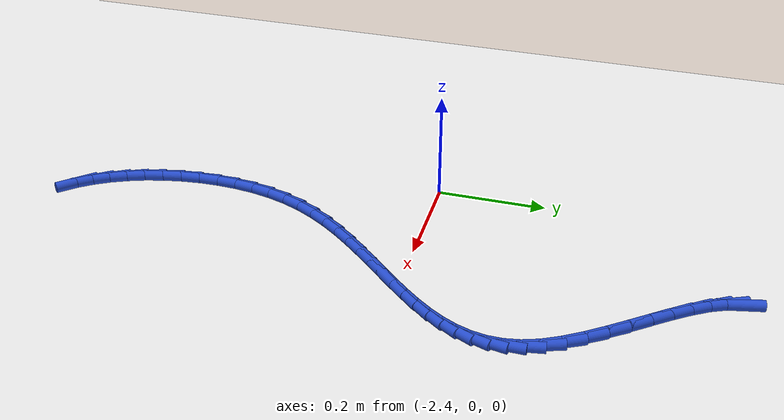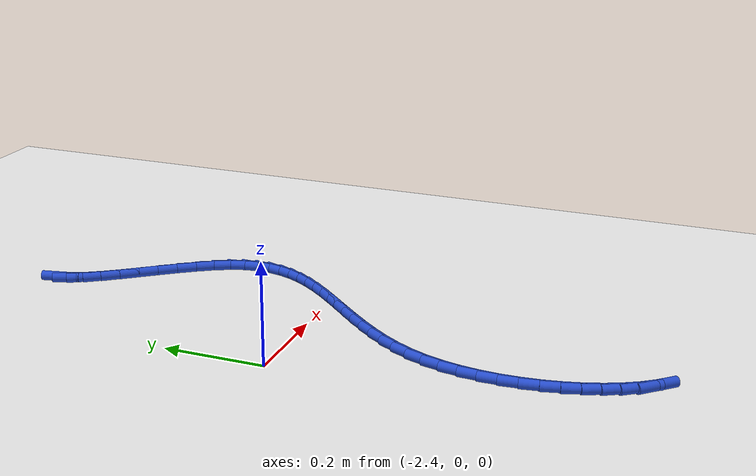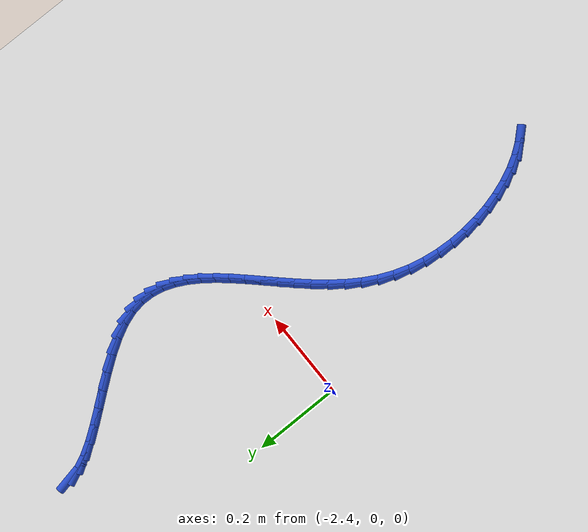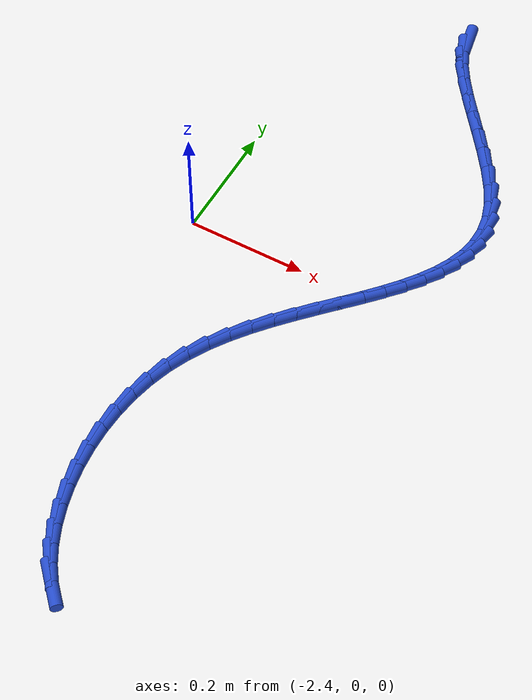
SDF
<sdf version="1.6">
 <world name="default">
  <model name="ground_plane">
   <static>1</static>
   <link name="link">
    <collision name="collision">
     <geometry><plane><normal>0 0 1</normal><size>100 100</size></plane></geometry>
     <surface><friction><ode><mu>100</mu><mu2>50</mu2></ode></friction></surface>
    </collision>
    <visual name="visual">
     <cast_shadows>0</cast_shadows>
     <geometry><plane><normal>0 0 1</normal><size>100 100</size></plane></geometry>
     <material>
      <script><uri>file://media/materials/scripts/gazebo.material</uri><name>Gazebo/WhiteGlow</name></script>
     </material>
    </visual>
   </link>
  </model>
  <model name="line">
   <link name="link_102">
    <pose>-2.1860757312835157 0.5619819282911989 0.01 0 1.57 -1.3673195941499068</pose>
    <collision name="collision">
     <geometry><cylinder><radius>0.01</radius><length>0.08</length></cylinder></geometry>
    </collision>
    <visual name="visual">
     <material>
      <script><name>Gazebo/Blue</name><uri>file://media/materials/scripts/gazebo.material</uri></script>
     </material>
     <geometry><cylinder><radius>0.01</radius><length>0.08</length></cylinder></geometry>
    </visual>
   </link>
   <link name="link_103">
    <pose>-2.1812020826465557 0.5383615304289775 0.01 0 1.57 -1.1474594475073037</pose>
    <collision name="collision">
     <geometry><cylinder><radius>0.01</radius><length>0.08</length></cylinder></geometry>
    </collision>
    <visual name="visual">
     <material>
      <script><name>Gazebo/Blue</name><uri>file://media/materials/scripts/gazebo.material</uri></script>
     </material>
     <geometry><cylinder><radius>0.01</radius><length>0.08</length></cylinder></geometry>
    </visual>
   </link>
   <link name="link_104">
    <pose>-2.1694296135405082 0.5122342141244356 0.01 0 1.57 -1.0219908702117755</pose>
    <collision name="collision">
     <geometry><cylinder><radius>0.01</radius><length>0.08</length></cylinder></geometry>
    </collision>
    <visual name="visual">
     <material>
      <script><name>Gazebo/Blue</name><uri>file://media/materials/scripts/gazebo.material</uri></script>
     </material>
     <geometry><cylinder><radius>0.01</radius><length>0.08</length></cylinder></geometry>
    </visual>
   </link>
   <link name="link_105">
    <pose>-2.1521715568479594 0.48401000259444965 0.01 0 1.57 -0.9513142937274885</pose>
    <collision name="collision">
     <geometry><cylinder><radius>0.01</radius><length>0.08</length></cylinder></geometry>
    </collision>
    <visual name="visual">
     <material>
      <script><name>Gazebo/Blue</name><uri>file://media/materials/scripts/gazebo.material</uri></script>
     </material>
     <geometry><cylinder><radius>0.01</radius><length>0.08</length></cylinder></geometry>
    </visual>
   </link>
   <link name="link_106">
    <pose>-2.1308411454514973 0.4540989190558954 0.01 0 1.57 -0.9151245507844217</pose>
    <collision name="collision">
     <geometry><cylinder><radius>0.01</radius><length>0.08</length></cylinder></geometry>
    </collision>
    <visual name="visual">
     <material>
      <script><name>Gazebo/Blue</name><uri>file://media/materials/scripts/gazebo.material</uri></script>
     </material>
     <geometry><cylinder><radius>0.01</radius><length>0.08</length></cylinder></geometry>
    </visual>
   </link>
   <link name="link_107">
    <pose>-2.106851612233709 0.42291098672564975 0.01 0 1.57 -0.9038722232317058</pose>
    <collision name="collision">
     <geometry><cylinder><radius>0.01</radius><length>0.08</length></cylinder></geometry>
    </collision>
    <visual name="visual">
     <material>
      <script><name>Gazebo/Blue</name><uri>file://media/materials/scripts/gazebo.material</uri></script>
     </material>
     <geometry><cylinder><radius>0.01</radius><length>0.08</length></cylinder></geometry>
    </visual>
   </link>
   <link name="link_108">
    <pose>-2.081616190077182 0.3908562288205889 0.01 0 1.57 -0.9139580029424577</pose>
    <collision name="collision">
     <geometry><cylinder><radius>0.01</radius><length>0.08</length></cylinder></geometry>
    </collision>
    <visual name="visual">
     <material>
      <script><name>Gazebo/Blue</name><uri>file://media/materials/scripts/gazebo.material</uri></script>
     </material>
     <geometry><cylinder><radius>0.01</radius><length>0.08</length></cylinder></geometry>
    </visual>
   </link>
   <link name="link_109">
    <pose>-2.056548111864503 0.3583446685575896 0.01 0 1.57 -0.9458535728049178</pose>
    <collision name="collision">
     <geometry><cylinder><radius>0.01</radius><length>0.08</length></cylinder></geometry>
    </collision>
    <visual name="visual">
     <material>
      <script><name>Gazebo/Blue</name><uri>file://media/materials/scripts/gazebo.material</uri></script>
     </material>
     <geometry><cylinder><radius>0.01</radius><length>0.08</length></cylinder></geometry>
    </visual>
   </link>
   <link name="link_110">
    <pose>-2.0330606104782594 0.3257863291535281 0.01 0 1.57 -1.0039366010225572</pose>
    <collision name="collision">
     <geometry><cylinder><radius>0.01</radius><length>0.08</length></cylinder></geometry>
    </collision>
    <visual name="visual">
     <material>
      <script><name>Gazebo/Blue</name><uri>file://media/materials/scripts/gazebo.material</uri></script>
     </material>
     <geometry><cylinder><radius>0.01</radius><length>0.08</length></cylinder></geometry>
    </visual>
   </link>
   <link name="link_111">
    <pose>-2.012566918801039 0.29359123382528085 0.01 0 1.57 -1.0976283259730517</pose>
    <collision name="collision">
     <geometry><cylinder><radius>0.01</radius><length>0.08</length></cylinder></geometry>
    </collision>
    <visual name="visual">
     <material>
      <script><name>Gazebo/Blue</name><uri>file://media/materials/scripts/gazebo.material</uri></script>
     </material>
     <geometry><cylinder><radius>0.01</radius><length>0.08</length></cylinder></geometry>
    </visual>
   </link>
   <link name="link_112">
    <pose>-1.996480269715428 0.26216940578972425 0.01 0 1.57 -1.2399537431158196</pose>
    <collision name="collision">
     <geometry><cylinder><radius>0.01</radius><length>0.08</length></cylinder></geometry>
    </collision>
    <visual name="visual">
     <material>
      <script><name>Gazebo/Blue</name><uri>file://media/materials/scripts/gazebo.material</uri></script>
     </material>
     <geometry><cylinder><radius>0.01</radius><length>0.08</length></cylinder></geometry>
    </visual>
   </link>
   <link name="link_113">
    <pose>-1.9860809287705712 0.2318918136920121 0.01 0 1.57 -1.4137387415297962</pose>
    <collision name="collision">
     <geometry><cylinder><radius>0.01</radius><length>0.08</length></cylinder></geometry>
    </collision>
    <visual name="visual">
     <material>
      <script><name>Gazebo/Blue</name><uri>file://media/materials/scripts/gazebo.material</uri></script>
     </material>
     <geometry><cylinder><radius>0.01</radius><length>0.08</length></cylinder></geometry>
    </visual>
   </link>
   <link name="link_114">
    <pose>-1.9814712768205203 0.20278346314176007 0.01 0 1.57 1.5470562556911096</pose>
    <collision name="collision">
     <geometry><cylinder><radius>0.01</radius><length>0.08</length></cylinder></geometry>
    </collision>
    <visual name="visual">
     <material>
      <script><name>Gazebo/Blue</name><uri>file://media/materials/scripts/gazebo.material</uri></script>
     </material>
     <geometry><cylinder><radius>0.01</radius><length>0.08</length></cylinder></geometry>
    </visual>
   </link>
   <link name="link_115">
    <pose>-1.9821383754633435 0.1746886309229937 0.01 0 1.57 1.3741833634985388</pose>
    <collision name="collision">
     <geometry><cylinder><radius>0.01</radius><length>0.08</length></cylinder></geometry>
    </collision>
    <visual name="visual">
     <material>
      <script><name>Gazebo/Blue</name><uri>file://media/materials/scripts/gazebo.material</uri></script>
     </material>
     <geometry><cylinder><radius>0.01</radius><length>0.08</length></cylinder></geometry>
    </visual>
   </link>
   <link name="link_116">
    <pose>-1.9875639313964522 0.1474500210022161 0.01 0 1.57 1.2215286965074512</pose>
    <collision name="collision">
     <geometry><cylinder><radius>0.01</radius><length>0.08</length></cylinder></geometry>
    </collision>
    <visual name="visual">
     <material>
      <script><name>Gazebo/Blue</name><uri>file://media/materials/scripts/gazebo.material</uri></script>
     </material>
     <geometry><cylinder><radius>0.01</radius><length>0.08</length></cylinder></geometry>
    </visual>
   </link>
   <link name="link_117">
    <pose>-1.9972296513172527 0.12091033734593039 0.01 0 1.57 1.0952636267815974</pose>
    <collision name="collision">
     <geometry><cylinder><radius>0.01</radius><length>0.08</length></cylinder></geometry>
    </collision>
    <visual name="visual">
     <material>
      <script><name>Gazebo/Blue</name><uri>file://media/materials/scripts/gazebo.material</uri></script>
     </material>
     <geometry><cylinder><radius>0.01</radius><length>0.08</length></cylinder></geometry>
    </visual>
   </link>
   <link name="link_118">
    <pose>-2.0106172419231534 0.09491228392063968 0.01 0 1.57 0.9960077179800424</pose>
    <collision name="collision">
     <geometry><cylinder><radius>0.01</radius><length>0.08</length></cylinder></geometry>
    </collision>
    <visual name="visual">
     <material>
      <script><name>Gazebo/Blue</name><uri>file://media/materials/scripts/gazebo.material</uri></script>
     </material>
     <geometry><cylinder><radius>0.01</radius><length>0.08</length></cylinder></geometry>
    </visual>
   </link>
   <link name="link_119">
    <pose>-2.027208409911564 0.06929856469284697 0.01 0 1.57 0.9213611156073147</pose>
    <collision name="collision">
     <geometry><cylinder><radius>0.01</radius><length>0.08</length></cylinder></geometry>
    </collision>
    <visual name="visual">
     <material>
      <script><name>Gazebo/Blue</name><uri>file://media/materials/scripts/gazebo.material</uri></script>
     </material>
     <geometry><cylinder><radius>0.01</radius><length>0.08</length></cylinder></geometry>
    </visual>
   </link>
   <link name="link_120">
    <pose>-2.046484861979891 0.04391188362905575 0.01 0 1.57 0.868046599441246</pose>
    <collision name="collision">
     <geometry><cylinder><radius>0.01</radius><length>0.08</length></cylinder></geometry>
    </collision>
    <visual name="visual">
     <material>
      <script><name>Gazebo/Blue</name><uri>file://media/materials/scripts/gazebo.material</uri></script>
     </material>
     <geometry><cylinder><radius>0.01</radius><length>0.08</length></cylinder></geometry>
    </visual>
   </link>
   <link name="link_121">
    <pose>-2.067928304825544 0.018594944695768414 0.01 0 1.57 0.8330427608606457</pose>
    <collision name="collision">
     <geometry><cylinder><radius>0.01</radius><length>0.08</length></cylinder></geometry>
    </collision>
    <visual name="visual">
     <material>
      <script><name>Gazebo/Blue</name><uri>file://media/materials/scripts/gazebo.material</uri></script>
     </material>
     <geometry><cylinder><radius>0.01</radius><length>0.08</length></cylinder></geometry>
    </visual>
   </link>
   <link name="link_122">
    <pose>-2.09102044514593 -0.006809548140511643 0.01 0 1.57 0.8139996315990207</pose>
    <collision name="collision">
     <geometry><cylinder><radius>0.01</radius><length>0.08</length></cylinder></geometry>
    </collision>
    <visual name="visual">
     <material>
      <script><name>Gazebo/Blue</name><uri>file://media/materials/scripts/gazebo.material</uri></script>
     </material>
     <geometry><cylinder><radius>0.01</radius><length>0.08</length></cylinder></geometry>
    </visual>
   </link>
   <link name="link_123">
    <pose>-2.11524298963846 -0.0324588909132813 0.01 0 1.57 0.8093064697358138</pose>
    <collision name="collision">
     <geometry><cylinder><radius>0.01</radius><length>0.08</length></cylinder></geometry>
    </collision>
    <visual name="visual">
     <material>
      <script><name>Gazebo/Blue</name><uri>file://media/materials/scripts/gazebo.material</uri></script>
     </material>
     <geometry><cylinder><radius>0.01</radius><length>0.08</length></cylinder></geometry>
    </visual>
   </link>
   <link name="link_124">
    <pose>-2.140077645000539 -0.05851037965603744 0.01 0 1.57 0.8180306823812347</pose>
    <collision name="collision">
     <geometry><cylinder><radius>0.01</radius><length>0.08</length></cylinder></geometry>
    </collision>
    <visual name="visual">
     <material>
      <script><name>Gazebo/Blue</name><uri>file://media/materials/scripts/gazebo.material</uri></script>
     </material>
     <geometry><cylinder><radius>0.01</radius><length>0.08</length></cylinder></geometry>
    </visual>
   </link>
   <link name="link_125">
    <pose>-2.1650061179295776 -0.08512131040227702 0.01 0 1.57 0.839822097381564</pose>
    <collision name="collision">
     <geometry><cylinder><radius>0.01</radius><length>0.08</length></cylinder></geometry>
    </collision>
    <visual name="visual">
     <material>
      <script><name>Gazebo/Blue</name><uri>file://media/materials/scripts/gazebo.material</uri></script>
     </material>
     <geometry><cylinder><radius>0.01</radius><length>0.08</length></cylinder></geometry>
    </visual>
   </link>
   <link name="link_126">
    <pose>-2.189510115122984 -0.11244897918549696 0.01 0 1.57 0.8748077578335698</pose>
    <collision name="collision">
     <geometry><cylinder><radius>0.01</radius><length>0.08</length></cylinder></geometry>
    </collision>
    <visual name="visual">
     <material>
      <script><name>Gazebo/Blue</name><uri>file://media/materials/scripts/gazebo.material</uri></script>
     </material>
     <geometry><cylinder><radius>0.01</radius><length>0.08</length></cylinder></geometry>
    </visual>
   </link>
   <link name="link_127">
    <pose>-2.213071343278165 -0.14065068203919412 0.01 0 1.57 0.9234664187370879</pose>
    <collision name="collision">
     <geometry><cylinder><radius>0.01</radius><length>0.08</length></cylinder></geometry>
    </collision>
    <visual name="visual">
     <material>
      <script><name>Gazebo/Blue</name><uri>file://media/materials/scripts/gazebo.material</uri></script>
     </material>
     <geometry><cylinder><radius>0.01</radius><length>0.08</length></cylinder></geometry>
    </visual>
   </link>
   <link name="link_128">
    <pose>-2.2351715090925297 -0.16988371499686544 0.01 0 1.57 0.9864504639938007</pose>
    <collision name="collision">
     <geometry><cylinder><radius>0.01</radius><length>0.08</length></cylinder></geometry>
    </collision>
    <visual name="visual">
     <material>
      <script><name>Gazebo/Blue</name><uri>file://media/materials/scripts/gazebo.material</uri></script>
     </material>
     <geometry><cylinder><radius>0.01</radius><length>0.08</length></cylinder></geometry>
    </visual>
   </link>
   <link name="link_129">
    <pose>-2.255292319263487 -0.20030537409200783 0.01 0 1.57 1.0643112997572879</pose>
    <collision name="collision">
     <geometry><cylinder><radius>0.01</radius><length>0.08</length></cylinder></geometry>
    </collision>
    <visual name="visual">
     <material>
      <script><name>Gazebo/Blue</name><uri>file://media/materials/scripts/gazebo.material</uri></script>
     </material>
     <geometry><cylinder><radius>0.01</radius><length>0.08</length></cylinder></geometry>
    </visual>
   </link>
   <link name="link_130">
    <pose>-2.2729154804884453 -0.2320729553581182 0.01 0 1.57 1.1569578626106933</pose>
    <collision name="collision">
     <geometry><cylinder><radius>0.01</radius><length>0.08</length></cylinder></geometry>
    </collision>
    <visual name="visual">
     <material>
      <script><name>Gazebo/Blue</name><uri>file://media/materials/scripts/gazebo.material</uri></script>
     </material>
     <geometry><cylinder><radius>0.01</radius><length>0.08</length></cylinder></geometry>
    </visual>
   </link>
   <link name="link_131">
    <pose>-2.2875265878985123 -0.2653403208176651 0.01 0 1.57 1.2556515527829366</pose>
    <collision name="collision">
     <geometry><cylinder><radius>0.01</radius><length>0.08</length></cylinder></geometry>
    </collision>
    <visual name="visual">
     <material>
      <script><name>Gazebo/Blue</name><uri>file://media/materials/scripts/gazebo.material</uri></script>
     </material>
     <geometry><cylinder><radius>0.01</radius><length>0.08</length></cylinder></geometry>
    </visual>
   </link>
   <link name="link_132">
    <pose>-2.2988441225609852 -0.30005566282377083 0.01 0 1.57 1.348158936757122</pose>
    <collision name="collision">
     <geometry><cylinder><radius>0.01</radius><length>0.08</length></cylinder></geometry>
    </collision>
    <visual name="visual">
     <material>
      <script><name>Gazebo/Blue</name><uri>file://media/materials/scripts/gazebo.material</uri></script>
     </material>
     <geometry><cylinder><radius>0.01</radius><length>0.08</length></cylinder></geometry>
    </visual>
   </link>
   <link name="link_133">
    <pose>-2.3069472974019156 -0.33584859887988866 0.01 0 1.57 1.4345830652235025</pose>
    <collision name="collision">
     <geometry><cylinder><radius>0.01</radius><length>0.08</length></cylinder></geometry>
    </collision>
    <visual name="visual">
     <material>
      <script><name>Gazebo/Blue</name><uri>file://media/materials/scripts/gazebo.material</uri></script>
     </material>
     <geometry><cylinder><radius>0.01</radius><length>0.08</length></cylinder></geometry>
    </visual>
   </link>
   <link name="link_134">
    <pose>-2.311946327854629 -0.37232136709711733 0.01 0 1.57 1.51629694618266</pose>
    <collision name="collision">
     <geometry><cylinder><radius>0.01</radius><length>0.08</length></cylinder></geometry>
    </collision>
    <visual name="visual">
     <material>
      <script><name>Gazebo/Blue</name><uri>file://media/materials/scripts/gazebo.material</uri></script>
     </material>
     <geometry><cylinder><radius>0.01</radius><length>0.08</length></cylinder></geometry>
    </visual>
   </link>
   <link name="link_135">
    <pose>-2.313951429352457 -0.4090762055865558 0.01 0 1.57 -1.5468207776269092</pose>
    <collision name="collision">
     <geometry><cylinder><radius>0.01</radius><length>0.08</length></cylinder></geometry>
    </collision>
    <visual name="visual">
     <material>
      <script><name>Gazebo/Blue</name><uri>file://media/materials/scripts/gazebo.material</uri></script>
     </material>
     <geometry><cylinder><radius>0.01</radius><length>0.08</length></cylinder></geometry>
    </visual>
   </link>
   <link name="link_136">
    <pose>-2.3130728173287256 -0.44571535245930255 0.01 0 1.57 -1.4700440957943612</pose>
    <collision name="collision">
     <geometry><cylinder><radius>0.01</radius><length>0.08</length></cylinder></geometry>
    </collision>
    <visual name="visual">
     <material>
      <script><name>Gazebo/Blue</name><uri>file://media/materials/scripts/gazebo.material</uri></script>
     </material>
     <geometry><cylinder><radius>0.01</radius><length>0.08</length></cylinder></geometry>
    </visual>
   </link>
   <link name="link_137">
    <pose>-2.3094207072167627 -0.4818410458264564 0.01 0 1.57 -1.393341970893265</pose>
    <collision name="collision">
     <geometry><cylinder><radius>0.01</radius><length>0.08</length></cylinder></geometry>
    </collision>
    <visual name="visual">
     <material>
      <script><name>Gazebo/Blue</name><uri>file://media/materials/scripts/gazebo.material</uri></script>
     </material>
     <geometry><cylinder><radius>0.01</radius><length>0.08</length></cylinder></geometry>
    </visual>
   </link>
   <link name="link_138">
    <pose>-2.303105314449898 -0.5170555237991163 0.01 0 1.57 -1.3149638145793139</pose>
    <collision name="collision">
     <geometry><cylinder><radius>0.01</radius><length>0.08</length></cylinder></geometry>
    </collision>
    <visual name="visual">
     <material>
      <script><name>Gazebo/Blue</name><uri>file://media/materials/scripts/gazebo.material</uri></script>
     </material>
     <geometry><cylinder><radius>0.01</radius><length>0.08</length></cylinder></geometry>
    </visual>
   </link>
   <link name="link_139">
    <pose>-2.294236854461458 -0.5509610244883807 0.01 0 1.57 -1.232966975914965</pose>
    <collision name="collision">
     <geometry><cylinder><radius>0.01</radius><length>0.08</length></cylinder></geometry>
    </collision>
    <visual name="visual">
     <material>
      <script><name>Gazebo/Blue</name><uri>file://media/materials/scripts/gazebo.material</uri></script>
     </material>
     <geometry><cylinder><radius>0.01</radius><length>0.08</length></cylinder></geometry>
    </visual>
   </link>
   <link name="link_140">
    <pose>-2.2829255426847714 -0.5831597860053486 0.01 0 1.57 -1.1451403209362692</pose>
    <collision name="collision">
     <geometry><cylinder><radius>0.01</radius><length>0.08</length></cylinder></geometry>
    </collision>
    <visual name="visual">
     <material>
      <script><name>Gazebo/Blue</name><uri>file://media/materials/scripts/gazebo.material</uri></script>
     </material>
     <geometry><cylinder><radius>0.01</radius><length>0.08</length></cylinder></geometry>
    </visual>
   </link>
   <link name="link_141">
    <pose>-2.2692815945531666 -0.6132540464611187 0.01 0 1.57 -1.0489356140998376</pose>
    <collision name="collision">
     <geometry><cylinder><radius>0.01</radius><length>0.08</length></cylinder></geometry>
    </collision>
    <visual name="visual">
     <material>
      <script><name>Gazebo/Blue</name><uri>file://media/materials/scripts/gazebo.material</uri></script>
     </material>
     <geometry><cylinder><radius>0.01</radius><length>0.08</length></cylinder></geometry>
    </visual>
   </link>
   <link name="link_142">
    <pose>-2.253415225499971 -0.6408460439667893 0.01 0 1.57 -0.9414499286016744</pose>
    <collision name="collision">
     <geometry><cylinder><radius>0.01</radius><length>0.08</length></cylinder></geometry>
    </collision>
    <visual name="visual">
     <material>
      <script><name>Gazebo/Blue</name><uri>file://media/materials/scripts/gazebo.material</uri></script>
     </material>
     <geometry><cylinder><radius>0.01</radius><length>0.08</length></cylinder></geometry>
    </visual>
   </link>
   <link name="link_143">
    <pose>-2.2354366509585137 -0.6655380166334598 0.01 0 1.57 -0.8195511589467575</pose>
    <collision name="collision">
     <geometry><cylinder><radius>0.01</radius><length>0.08</length></cylinder></geometry>
    </collision>
    <visual name="visual">
     <material>
      <script><name>Gazebo/Blue</name><uri>file://media/materials/scripts/gazebo.material</uri></script>
     </material>
     <geometry><cylinder><radius>0.01</radius><length>0.08</length></cylinder></geometry>
    </visual>
   </link>
  </model>
 </world>
</sdf>
